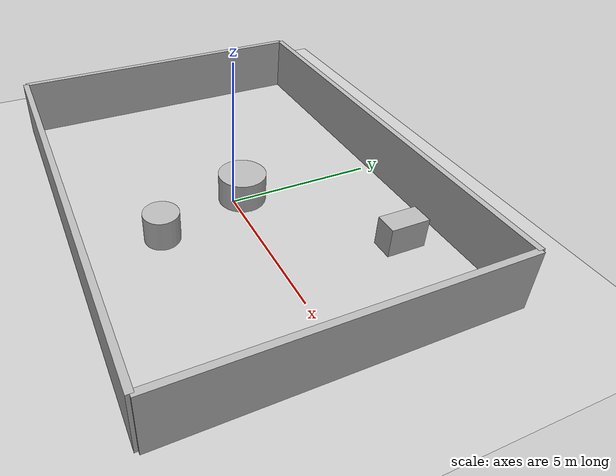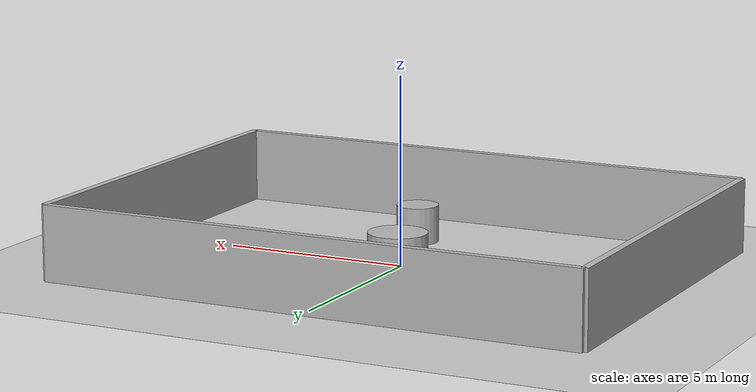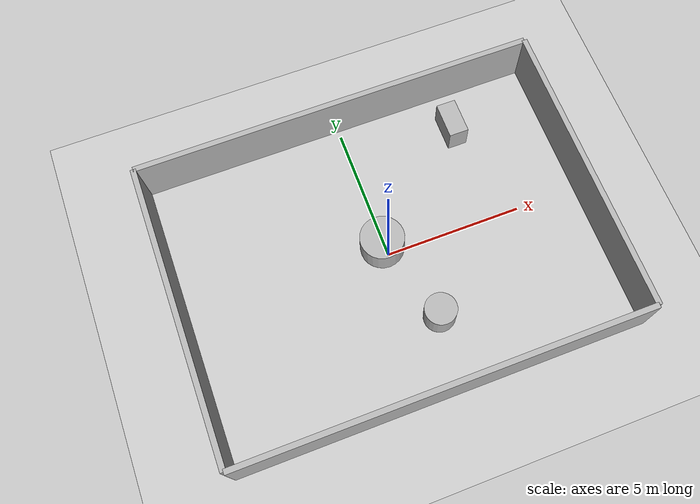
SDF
<?xml version="1.0"?>
<sdf version="1.6">
  <world name="env_70">

    <include><uri>model://ground_plane</uri></include>
    <include><uri>model://sun</uri></include>

    <!-- WALLS -->
    <model name="wall_north"><static>true</static><pose>0 5.35877332139291 1 0 0 0</pose>
      <link name="link"><collision name="collision">
        <geometry><box><size>14.687132016531134 0.2 2</size></box></geometry>
      </collision><visual name="visual">
        <geometry><box><size>14.687132016531134 0.2 2</size></box></geometry>
      </visual></link>
    </model>

    <model name="wall_south"><static>true</static><pose>0 -5.35877332139291 1 0 0 0</pose>
      <link name="link"><collision name="collision">
        <geometry><box><size>14.687132016531134 0.2 2</size></box></geometry>
      </collision><visual name="visual">
        <geometry><box><size>14.687132016531134 0.2 2</size></box></geometry>
      </visual></link>
    </model>

    <model name="wall_east"><static>true</static><pose>7.343566008265567 0 1 0 0 1.57</pose>
      <link name="link"><collision name="collision">
        <geometry><box><size>10.71754664278582 0.2 2</size></box></geometry>
      </collision><visual name="visual">
        <geometry><box><size>10.71754664278582 0.2 2</size></box></geometry>
      </visual></link>
    </model>

    <model name="wall_west"><static>true</static><pose>-7.343566008265567 0 1 0 0 1.57</pose>
      <link name="link"><collision name="collision">
        <geometry><box><size>10.71754664278582 0.2 2</size></box></geometry>
      </collision><visual name="visual">
        <geometry><box><size>10.71754664278582 0.2 2</size></box></geometry>
      </visual></link>
    </model>

    <!-- SENSOR -->

    <model name="lidar_sensor">
      <static>true</static>
      <pose>-2.283237973414626 -0.8264750361768893 0.4 0 0 0</pose>
      <link name="link">
        <sensor name="lidar" type="ray">
          <pose>0 0 0 0 0 0</pose>
          <visualize>true</visualize>
          <always_on>true</always_on>
          <update_rate>10</update_rate>
          <ray>
            <scan><horizontal>
              <samples>720</samples>
              <resolution>1</resolution>
              <min_angle>-3.14159</min_angle>
              <max_angle>3.14159</max_angle>
            </horizontal></scan>
            <range><min>0.15</min><max>20.0</max><resolution>0.01</resolution></range>
          </ray>
          <plugin name="lidar_plugin" filename="liblidar_plugin.so"/>
        </sensor>
      </link>
    </model>

    <!-- OBSTACLES -->

    <model name="obstacle_0">
      <static>true</static>
      <pose>3.9513171593508485 3.80953309241106 0.5 0 0 0</pose>
      <link name="link">
        <collision name="collision">
          <geometry><box><size>0.71 1.31 1.0</size></box></geometry>
        </collision>
        <visual name="visual">
          <geometry><box><size>0.71 1.31 1.0</size></box></geometry>
        </visual>
      </link>
    </model>

    <model name="obstacle_1">
      <static>true</static>
      <pose>0.8516219821080329 -2.727323472120502 0.5 0 0 0</pose>
      <link name="link">
        <collision name="collision">
          <geometry><cylinder><radius>0.57</radius><length>1.0</length></cylinder></geometry>
        </collision>
        <visual name="visual">
          <geometry><cylinder><radius>0.57</radius><length>1.0</length></cylinder></geometry>
        </visual>
      </link>
    </model>

    <model name="obstacle_2">
      <static>true</static>
      <pose>-0.08929232898009243 0.3574055275465522 0.5 0 0 0</pose>
      <link name="link">
        <collision name="collision">
          <geometry><cylinder><radius>0.79</radius><length>1.0</length></cylinder></geometry>
        </collision>
        <visual name="visual">
          <geometry><cylinder><radius>0.79</radius><length>1.0</length></cylinder></geometry>
        </visual>
      </link>
    </model>

  </world>
</sdf>
